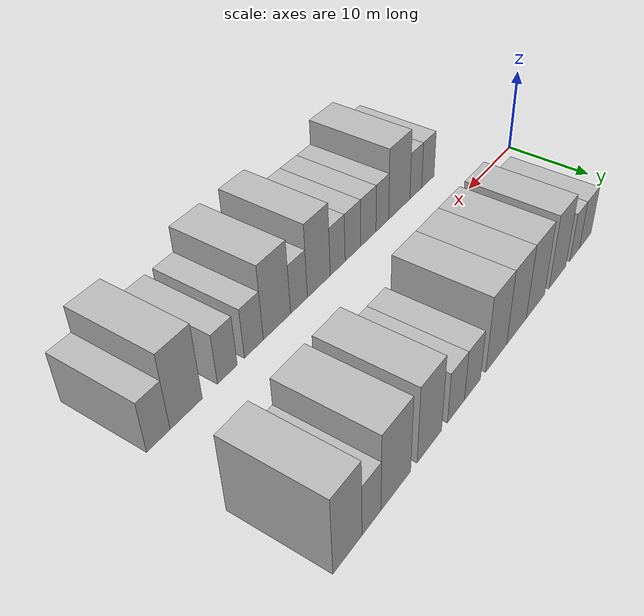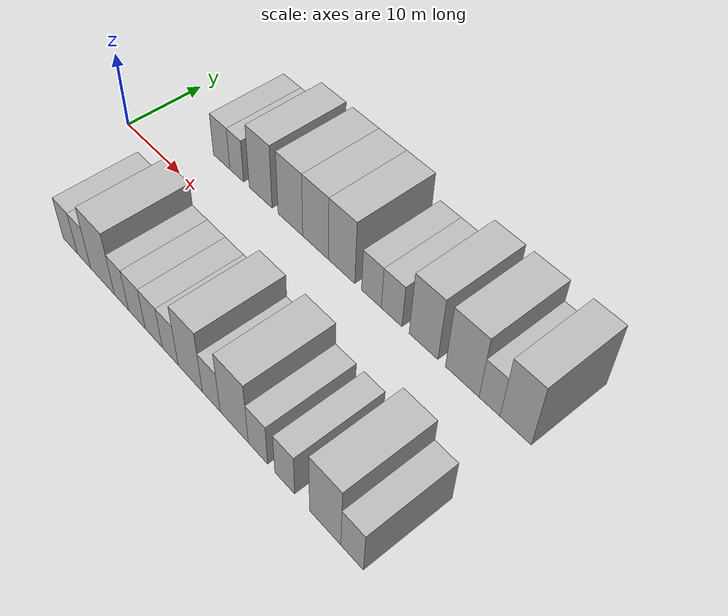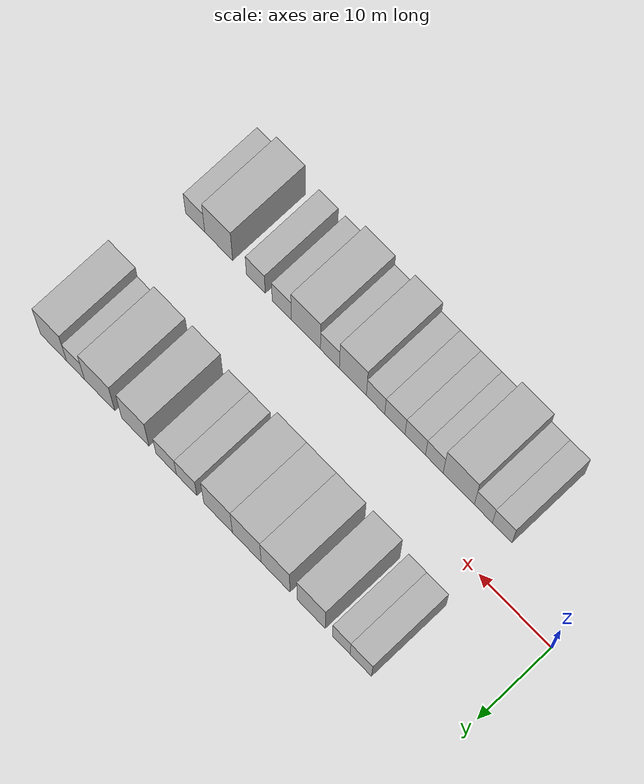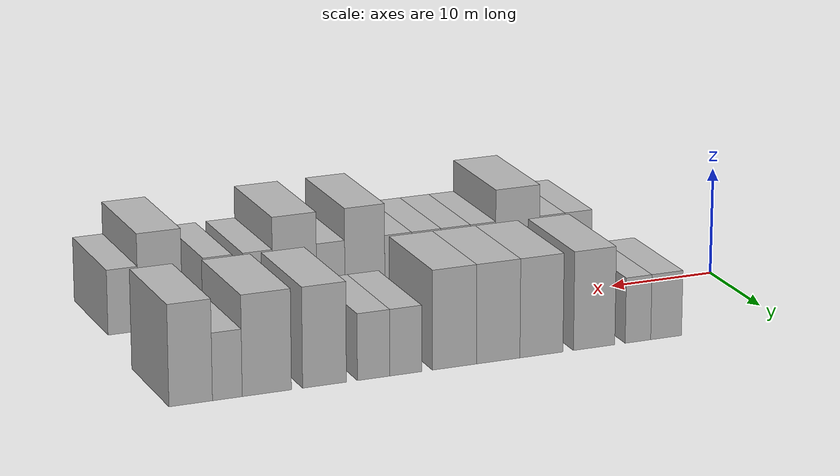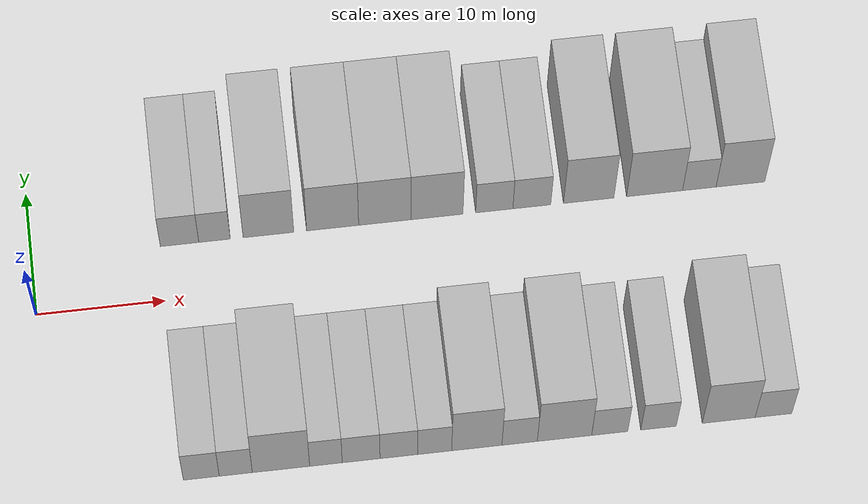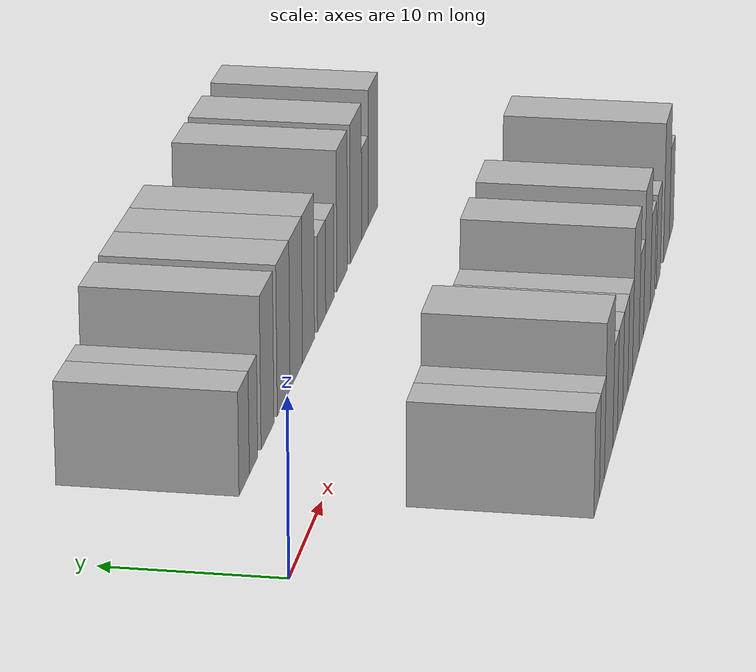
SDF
<sdf version="1.6">
 <world name="default">
  <model name="building_1">
   <static>1</static>
   <pose>11.4937 9.5000 0 0.000000 0.000000 1.570796</pose>
   <link name="link">
    <pose>0 0 3.00 0 0 0</pose>
    <collision name="collision"><geometry><box><size>10.0000 2.9875 6.0000</size></box></geometry></collision>
    <visual name="visual">
     <cast_shadows>0</cast_shadows>
     <geometry><box><size>10.0000 2.9875 6.0000</size></box></geometry>
     <material>
      <script>
       <uri>model://HANNAS_wall/materials/scripts</uri>
       <uri>model://HANNAS_wall/materials/textures</uri>
       <name>vrc/HANNAS_wall</name>
      </script>
     </material>
    </visual>
   </link>
  </model>
  <model name="building_2">
   <static>1</static>
   <pose>14.2155 9.5000 0 0.000000 0.000000 1.570796</pose>
   <link name="link">
    <pose>0 0 3.00 0 0 0</pose>
    <collision name="collision"><geometry><box><size>10.0000 2.4561 6.0000</size></box></geometry></collision>
    <visual name="visual">
     <cast_shadows>0</cast_shadows>
     <geometry><box><size>10.0000 2.4561 6.0000</size></box></geometry>
     <material>
      <script>
       <uri>model://HANNAS_wall/materials/scripts</uri>
       <uri>model://HANNAS_wall/materials/textures</uri>
       <name>vrc/HANNAS_wall</name>
      </script>
     </material>
    </visual>
   </link>
  </model>
  <model name="building_3">
   <static>1</static>
   <pose>18.4167 9.5000 0 0.000000 0.000000 1.570796</pose>
   <link name="link">
    <pose>0 0 4.50 0 0 0</pose>
    <collision name="collision"><geometry><box><size>10.0000 3.9462 9.0000</size></box></geometry></collision>
    <visual name="visual">
     <cast_shadows>0</cast_shadows>
     <geometry><box><size>10.0000 3.9462 9.0000</size></box></geometry>
     <material>
      <script>
       <uri>model://HANNAS_wall/materials/scripts</uri>
       <uri>model://HANNAS_wall/materials/textures</uri>
       <name>vrc/HANNAS_wall</name>
      </script>
     </material>
    </visual>
   </link>
  </model>
  <model name="building_4">
   <static>1</static>
   <pose>23.4204 9.5000 0 0.000000 0.000000 1.570796</pose>
   <link name="link">
    <pose>0 0 4.50 0 0 0</pose>
    <collision name="collision"><geometry><box><size>10.0000 4.0612 9.0000</size></box></geometry></collision>
    <visual name="visual">
     <cast_shadows>0</cast_shadows>
     <geometry><box><size>10.0000 4.0612 9.0000</size></box></geometry>
     <material>
      <script>
       <uri>model://HANNAS_wall/materials/scripts</uri>
       <uri>model://HANNAS_wall/materials/textures</uri>
       <name>vrc/HANNAS_wall</name>
      </script>
     </material>
    </visual>
   </link>
  </model>
  <model name="building_5">
   <static>1</static>
   <pose>27.4896 9.5000 0 0.000000 0.000000 1.570796</pose>
   <link name="link">
    <pose>0 0 4.50 0 0 0</pose>
    <collision name="collision"><geometry><box><size>10.0000 4.0774 9.0000</size></box></geometry></collision>
    <visual name="visual">
     <cast_shadows>0</cast_shadows>
     <geometry><box><size>10.0000 4.0774 9.0000</size></box></geometry>
     <material>
      <script>
       <uri>model://HANNAS_wall/materials/scripts</uri>
       <uri>model://HANNAS_wall/materials/textures</uri>
       <name>vrc/HANNAS_wall</name>
      </script>
     </material>
    </visual>
   </link>
  </model>
  <model name="building_6">
   <static>1</static>
   <pose>31.5653 9.5000 0 0.000000 0.000000 1.570796</pose>
   <link name="link">
    <pose>0 0 4.50 0 0 0</pose>
    <collision name="collision"><geometry><box><size>10.0000 4.0740 9.0000</size></box></geometry></collision>
    <visual name="visual">
     <cast_shadows>0</cast_shadows>
     <geometry><box><size>10.0000 4.0740 9.0000</size></box></geometry>
     <material>
      <script>
       <uri>model://HANNAS_wall/materials/scripts</uri>
       <uri>model://HANNAS_wall/materials/textures</uri>
       <name>vrc/HANNAS_wall</name>
      </script>
     </material>
    </visual>
   </link>
  </model>
  <model name="building_7">
   <static>1</static>
   <pose>36.0594 9.5000 0 0.000000 0.000000 1.570796</pose>
   <link name="link">
    <pose>0 0 3.00 0 0 0</pose>
    <collision name="collision"><geometry><box><size>10.0000 2.9140 6.0000</size></box></geometry></collision>
    <visual name="visual">
     <cast_shadows>0</cast_shadows>
     <geometry><box><size>10.0000 2.9140 6.0000</size></box></geometry>
     <material>
      <script>
       <uri>model://HANNAS_wall/materials/scripts</uri>
       <uri>model://HANNAS_wall/materials/textures</uri>
       <name>vrc/HANNAS_wall</name>
      </script>
     </material>
    </visual>
   </link>
  </model>
  <model name="building_8">
   <static>1</static>
   <pose>38.9993 9.5000 0 0.000000 0.000000 1.570796</pose>
   <link name="link">
    <pose>0 0 3.00 0 0 0</pose>
    <collision name="collision"><geometry><box><size>10.0000 2.9658 6.0000</size></box></geometry></collision>
    <visual name="visual">
     <cast_shadows>0</cast_shadows>
     <geometry><box><size>10.0000 2.9658 6.0000</size></box></geometry>
     <material>
      <script>
       <uri>model://HANNAS_wall/materials/scripts</uri>
       <uri>model://HANNAS_wall/materials/textures</uri>
       <name>vrc/HANNAS_wall</name>
      </script>
     </material>
    </visual>
   </link>
  </model>
  <model name="building_9">
   <static>1</static>
   <pose>43.4593 9.5000 0 0.000000 0.000000 1.570796</pose>
   <link name="link">
    <pose>0 0 4.50 0 0 0</pose>
    <collision name="collision"><geometry><box><size>10.0000 3.9543 9.0000</size></box></geometry></collision>
    <visual name="visual">
     <cast_shadows>0</cast_shadows>
     <geometry><box><size>10.0000 3.9543 9.0000</size></box></geometry>
     <material>
      <script>
       <uri>model://HANNAS_wall/materials/scripts</uri>
       <uri>model://HANNAS_wall/materials/textures</uri>
       <name>vrc/HANNAS_wall</name>
      </script>
     </material>
    </visual>
   </link>
  </model>
  <model name="building_10">
   <static>1</static>
   <pose>48.6359 9.5000 0 0.000000 0.000000 1.570796</pose>
   <link name="link">
    <pose>0 0 4.50 0 0 0</pose>
    <collision name="collision"><geometry><box><size>10.0000 4.3989 9.0000</size></box></geometry></collision>
    <visual name="visual">
     <cast_shadows>0</cast_shadows>
     <geometry><box><size>10.0000 4.3989 9.0000</size></box></geometry>
     <material>
      <script>
       <uri>model://HANNAS_wall/materials/scripts</uri>
       <uri>model://HANNAS_wall/materials/textures</uri>
       <name>vrc/HANNAS_wall</name>
      </script>
     </material>
    </visual>
   </link>
  </model>
  <model name="building_11">
   <static>1</static>
   <pose>52.1533 9.5000 0 0.000000 0.000000 1.570796</pose>
   <link name="link">
    <pose>0 0 3.00 0 0 0</pose>
    <collision name="collision"><geometry><box><size>10.0000 2.6358 6.0000</size></box></geometry></collision>
    <visual name="visual">
     <cast_shadows>0</cast_shadows>
     <geometry><box><size>10.0000 2.6358 6.0000</size></box></geometry>
     <material>
      <script>
       <uri>model://HANNAS_wall/materials/scripts</uri>
       <uri>model://HANNAS_wall/materials/textures</uri>
       <name>vrc/HANNAS_wall</name>
      </script>
     </material>
    </visual>
   </link>
  </model>
  <model name="building_12">
   <static>1</static>
   <pose>55.3849 9.5000 0 0.000000 0.000000 1.570796</pose>
   <link name="link">
    <pose>0 0 4.50 0 0 0</pose>
    <collision name="collision"><geometry><box><size>10.0000 3.8273 9.0000</size></box></geometry></collision>
    <visual name="visual">
     <cast_shadows>0</cast_shadows>
     <geometry><box><size>10.0000 3.8273 9.0000</size></box></geometry>
     <material>
      <script>
       <uri>model://HANNAS_wall/materials/scripts</uri>
       <uri>model://HANNAS_wall/materials/textures</uri>
       <name>vrc/HANNAS_wall</name>
      </script>
     </material>
    </visual>
   </link>
  </model>
  <model name="building_52">
   <static>1</static>
   <pose>11.3659 -9.5000 0 0.000000 0.000000 1.570796</pose>
   <link name="link">
    <pose>0 0 3.00 0 0 0</pose>
    <collision name="collision"><geometry><box><size>10.0000 2.7319 6.0000</size></box></geometry></collision>
    <visual name="visual">
     <cast_shadows>0</cast_shadows>
     <geometry><box><size>10.0000 2.7319 6.0000</size></box></geometry>
     <material>
      <script>
       <uri>model://HANNAS_wall/materials/scripts</uri>
       <uri>model://HANNAS_wall/materials/textures</uri>
       <name>vrc/HANNAS_wall</name>
      </script>
     </material>
    </visual>
   </link>
  </model>
  <model name="building_53">
   <static>1</static>
   <pose>13.9911 -9.5000 0 0.000000 0.000000 1.570796</pose>
   <link name="link">
    <pose>0 0 3.00 0 0 0</pose>
    <collision name="collision"><geometry><box><size>10.0000 2.5186 6.0000</size></box></geometry></collision>
    <visual name="visual">
     <cast_shadows>0</cast_shadows>
     <geometry><box><size>10.0000 2.5186 6.0000</size></box></geometry>
     <material>
      <script>
       <uri>model://HANNAS_wall/materials/scripts</uri>
       <uri>model://HANNAS_wall/materials/textures</uri>
       <name>vrc/HANNAS_wall</name>
      </script>
     </material>
    </visual>
   </link>
  </model>
  <model name="building_54">
   <static>1</static>
   <pose>17.4318 -9.5000 0 0.000000 0.000000 1.570796</pose>
   <link name="link">
    <pose>0 0 4.50 0 0 0</pose>
    <collision name="collision"><geometry><box><size>10.0000 4.3627 9.0000</size></box></geometry></collision>
    <visual name="visual">
     <cast_shadows>0</cast_shadows>
     <geometry><box><size>10.0000 4.3627 9.0000</size></box></geometry>
     <material>
      <script>
       <uri>model://HANNAS_wall/materials/scripts</uri>
       <uri>model://HANNAS_wall/materials/textures</uri>
       <name>vrc/HANNAS_wall</name>
      </script>
     </material>
    </visual>
   </link>
  </model>
  <model name="building_55">
   <static>1</static>
   <pose>20.8571 -9.5000 0 0.000000 0.000000 1.570796</pose>
   <link name="link">
    <pose>0 0 3.00 0 0 0</pose>
    <collision name="collision"><geometry><box><size>10.0000 2.4880 6.0000</size></box></geometry></collision>
    <visual name="visual">
     <cast_shadows>0</cast_shadows>
     <geometry><box><size>10.0000 2.4880 6.0000</size></box></geometry>
     <material>
      <script>
       <uri>model://HANNAS_wall/materials/scripts</uri>
       <uri>model://HANNAS_wall/materials/textures</uri>
       <name>vrc/HANNAS_wall</name>
      </script>
     </material>
    </visual>
   </link>
  </model>
  <model name="building_56">
   <static>1</static>
   <pose>23.5439 -9.5000 0 0.000000 0.000000 1.570796</pose>
   <link name="link">
    <pose>0 0 3.00 0 0 0</pose>
    <collision name="collision"><geometry><box><size>10.0000 2.8854 6.0000</size></box></geometry></collision>
    <visual name="visual">
     <cast_shadows>0</cast_shadows>
     <geometry><box><size>10.0000 2.8854 6.0000</size></box></geometry>
     <material>
      <script>
       <uri>model://HANNAS_wall/materials/scripts</uri>
       <uri>model://HANNAS_wall/materials/textures</uri>
       <name>vrc/HANNAS_wall</name>
      </script>
     </material>
    </visual>
   </link>
  </model>
  <model name="building_57">
   <static>1</static>
   <pose>26.4178 -9.5000 0 0.000000 0.000000 1.570796</pose>
   <link name="link">
    <pose>0 0 3.00 0 0 0</pose>
    <collision name="collision"><geometry><box><size>10.0000 2.8624 6.0000</size></box></geometry></collision>
    <visual name="visual">
     <cast_shadows>0</cast_shadows>
     <geometry><box><size>10.0000 2.8624 6.0000</size></box></geometry>
     <material>
      <script>
       <uri>model://HANNAS_wall/materials/scripts</uri>
       <uri>model://HANNAS_wall/materials/textures</uri>
       <name>vrc/HANNAS_wall</name>
      </script>
     </material>
    </visual>
   </link>
  </model>
  <model name="building_58">
   <static>1</static>
   <pose>29.1541 -9.5000 0 0.000000 0.000000 1.570796</pose>
   <link name="link">
    <pose>0 0 3.00 0 0 0</pose>
    <collision name="collision"><geometry><box><size>10.0000 2.6103 6.0000</size></box></geometry></collision>
    <visual name="visual">
     <cast_shadows>0</cast_shadows>
     <geometry><box><size>10.0000 2.6103 6.0000</size></box></geometry>
     <material>
      <script>
       <uri>model://HANNAS_wall/materials/scripts</uri>
       <uri>model://HANNAS_wall/materials/textures</uri>
       <name>vrc/HANNAS_wall</name>
      </script>
     </material>
    </visual>
   </link>
  </model>
  <model name="building_59">
   <static>1</static>
   <pose>32.3824 -9.5000 0 0.000000 0.000000 1.570796</pose>
   <link name="link">
    <pose>0 0 4.50 0 0 0</pose>
    <collision name="collision"><geometry><box><size>10.0000 3.8461 9.0000</size></box></geometry></collision>
    <visual name="visual">
     <cast_shadows>0</cast_shadows>
     <geometry><box><size>10.0000 3.8461 9.0000</size></box></geometry>
     <material>
      <script>
       <uri>model://HANNAS_wall/materials/scripts</uri>
       <uri>model://HANNAS_wall/materials/textures</uri>
       <name>vrc/HANNAS_wall</name>
      </script>
     </material>
    </visual>
   </link>
  </model>
  <model name="building_60">
   <static>1</static>
   <pose>35.6603 -9.5000 0 0.000000 0.000000 1.570796</pose>
   <link name="link">
    <pose>0 0 3.00 0 0 0</pose>
    <collision name="collision"><geometry><box><size>10.0000 2.7098 6.0000</size></box></geometry></collision>
    <visual name="visual">
     <cast_shadows>0</cast_shadows>
     <geometry><box><size>10.0000 2.7098 6.0000</size></box></geometry>
     <material>
      <script>
       <uri>model://HANNAS_wall/materials/scripts</uri>
       <uri>model://HANNAS_wall/materials/textures</uri>
       <name>vrc/HANNAS_wall</name>
      </script>
     </material>
    </visual>
   </link>
  </model>
  <model name="building_61">
   <static>1</static>
   <pose>39.1015 -9.5000 0 0.000000 0.000000 1.570796</pose>
   <link name="link">
    <pose>0 0 4.50 0 0 0</pose>
    <collision name="collision"><geometry><box><size>10.0000 4.1725 9.0000</size></box></geometry></collision>
    <visual name="visual">
     <cast_shadows>0</cast_shadows>
     <geometry><box><size>10.0000 4.1725 9.0000</size></box></geometry>
     <material>
      <script>
       <uri>model://HANNAS_wall/materials/scripts</uri>
       <uri>model://HANNAS_wall/materials/textures</uri>
       <name>vrc/HANNAS_wall</name>
      </script>
     </material>
    </visual>
   </link>
  </model>
  <model name="building_62">
   <static>1</static>
   <pose>42.5727 -9.5000 0 0.000000 0.000000 1.570796</pose>
   <link name="link">
    <pose>0 0 3.00 0 0 0</pose>
    <collision name="collision"><geometry><box><size>10.0000 2.7698 6.0000</size></box></geometry></collision>
    <visual name="visual">
     <cast_shadows>0</cast_shadows>
     <geometry><box><size>10.0000 2.7698 6.0000</size></box></geometry>
     <material>
      <script>
       <uri>model://HANNAS_wall/materials/scripts</uri>
       <uri>model://HANNAS_wall/materials/textures</uri>
       <name>vrc/HANNAS_wall</name>
      </script>
     </material>
    </visual>
   </link>
  </model>
  <model name="building_63">
   <static>1</static>
   <pose>46.3197 -9.5000 0 0.000000 0.000000 1.570796</pose>
   <link name="link">
    <pose>0 0 3.00 0 0 0</pose>
    <collision name="collision"><geometry><box><size>10.0000 2.7242 6.0000</size></box></geometry></collision>
    <visual name="visual">
     <cast_shadows>0</cast_shadows>
     <geometry><box><size>10.0000 2.7242 6.0000</size></box></geometry>
     <material>
      <script>
       <uri>model://HANNAS_wall/materials/scripts</uri>
       <uri>model://HANNAS_wall/materials/textures</uri>
       <name>vrc/HANNAS_wall</name>
      </script>
     </material>
    </visual>
   </link>
  </model>
  <model name="building_64">
   <static>1</static>
   <pose>51.7155 -9.5000 0 0.000000 0.000000 1.570796</pose>
   <link name="link">
    <pose>0 0 4.50 0 0 0</pose>
    <collision name="collision"><geometry><box><size>10.0000 4.0674 9.0000</size></box></geometry></collision>
    <visual name="visual">
     <cast_shadows>0</cast_shadows>
     <geometry><box><size>10.0000 4.0674 9.0000</size></box></geometry>
     <material>
      <script>
       <uri>model://HANNAS_wall/materials/scripts</uri>
       <uri>model://HANNAS_wall/materials/textures</uri>
       <name>vrc/HANNAS_wall</name>
      </script>
     </material>
    </visual>
   </link>
  </model>
  <model name="building_65">
   <static>1</static>
   <pose>55.1573 -9.5000 0 0.000000 0.000000 1.570796</pose>
   <link name="link">
    <pose>0 0 3.00 0 0 0</pose>
    <collision name="collision"><geometry><box><size>10.0000 2.8162 6.0000</size></box></geometry></collision>
    <visual name="visual">
     <cast_shadows>0</cast_shadows>
     <geometry><box><size>10.0000 2.8162 6.0000</size></box></geometry>
     <material>
      <script>
       <uri>model://HANNAS_wall/materials/scripts</uri>
       <uri>model://HANNAS_wall/materials/textures</uri>
       <name>vrc/HANNAS_wall</name>
      </script>
     </material>
    </visual>
   </link>
  </model>
 </world>
</sdf>
